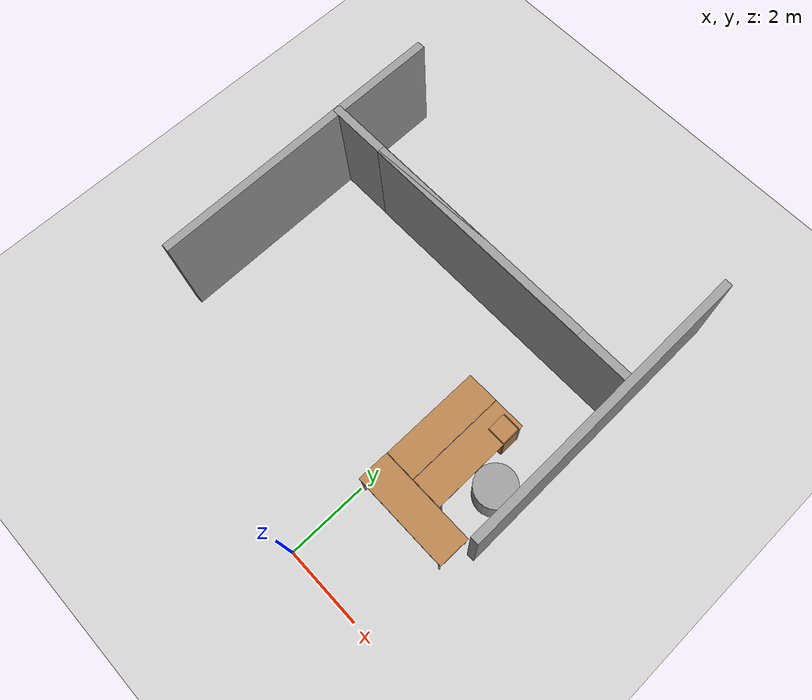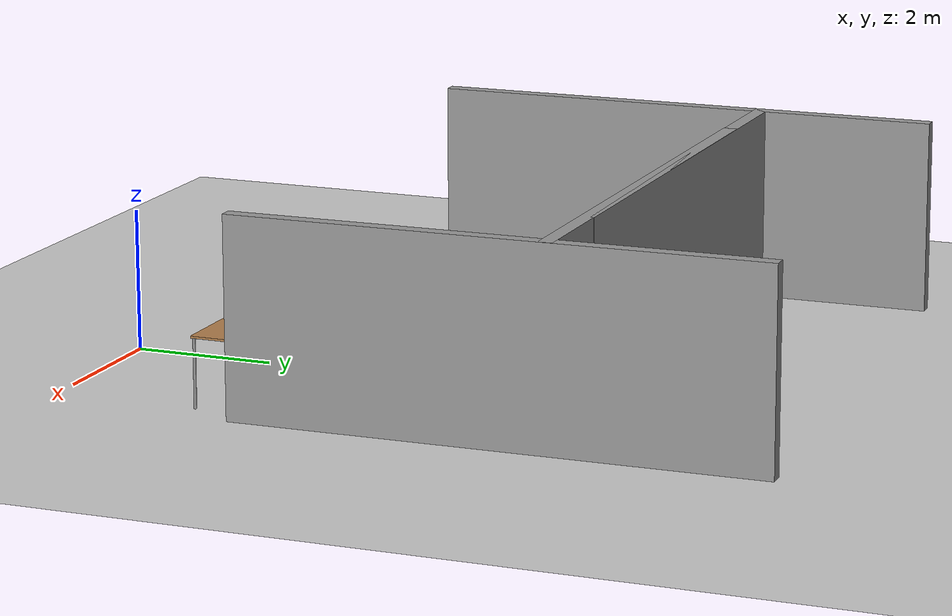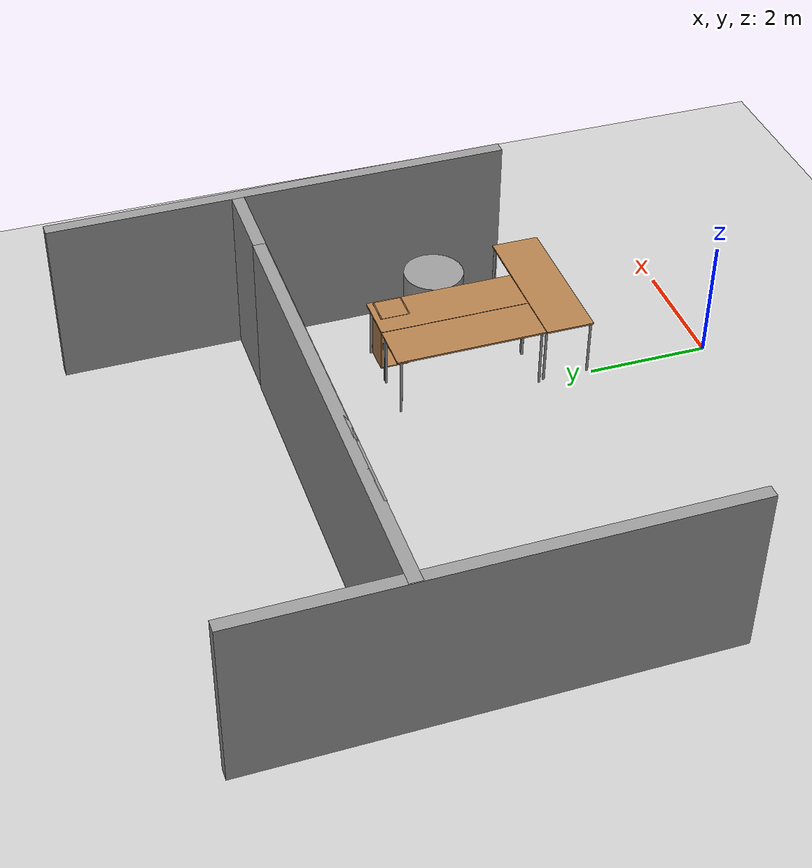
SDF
<sdf version="1.7">
 <world name="default">
  <model name="ground_plane">
   <static>1</static>
   <link name="link">
    <collision name="collision">
     <geometry><plane><normal>0 0 1</normal><size>100 100</size></plane></geometry>
     <surface><friction><ode><mu>100</mu><mu2>50</mu2></ode></friction></surface>
    </collision>
    <visual name="visual">
     <cast_shadows>0</cast_shadows>
     <geometry><plane><normal>0 0 1</normal><size>100 100</size></plane></geometry>
     <material>
      <script><uri>file://media/materials/scripts/gazebo.material</uri><name>Gazebo/Grey</name></script>
     </material>
    </visual>
   </link>
  </model>
  <model name="table_office_clone_clone">
   <link name="link">
    <pose>0 0 0 0 -0.001847 0</pose>
    <inertial>
     <mass>1</mass>
     <inertia><ixx>1</ixx><ixy>0</ixy><ixz>0</ixz><iyy>1</iyy><iyz>0</iyz><izz>1</izz></inertia>
    </inertial>
    <visual name="front_right_leg">
     <pose>1.18 -0.38 0.5 0 -0 0</pose>
     <geometry><cylinder><radius>0.02</radius><length>1</length></cylinder></geometry>
     <material>
      <script><uri>file://media/materials/scripts/gazebo.material</uri><name>Gazebo/Grey</name></script>
      <shader type="pixel"><normal_map>__default__</normal_map></shader>
      <ambient>0.3 0.3 0.3 1</ambient>
      <diffuse>0.7 0.7 0.7 1</diffuse>
      <specular>0.01 0.01 0.01 1</specular>
      <emissive>0 0 0 1</emissive>
     </material>
    </visual>
    <visual name="front_left_leg">
     <pose>1.18 0.38 0.5 0 -0 0</pose>
     <geometry><cylinder><radius>0.02</radius><length>1</length></cylinder></geometry>
     <material>
      <script><uri>file://media/materials/scripts/gazebo.material</uri><name>Gazebo/Grey</name></script>
      <shader type="pixel"><normal_map>__default__</normal_map></shader>
      <ambient>0.3 0.3 0.3 1</ambient>
      <diffuse>0.7 0.7 0.7 1</diffuse>
      <specular>0.01 0.01 0.01 1</specular>
      <emissive>0 0 0 1</emissive>
     </material>
    </visual>
    <visual name="back_right_leg">
     <pose>-1.18 -0.38 0.5 0 -0 0</pose>
     <geometry><cylinder><radius>0.02</radius><length>1</length></cylinder></geometry>
     <material>
      <script><uri>file://media/materials/scripts/gazebo.material</uri><name>Gazebo/Grey</name></script>
      <shader type="pixel"><normal_map>__default__</normal_map></shader>
      <ambient>0.3 0.3 0.3 1</ambient>
      <diffuse>0.7 0.7 0.7 1</diffuse>
      <specular>0.01 0.01 0.01 1</specular>
      <emissive>0 0 0 1</emissive>
     </material>
    </visual>
    <visual name="visual1">
     <pose>0 0 1 0 -0 0</pose>
     <geometry><box><size>2.5 0.8 0.03</size></box></geometry>
     <material>
      <script><uri>file://media/materials/scripts/gazebo.material</uri><name>Gazebo/Wood</name></script>
      <shader type="pixel"><normal_map>__default__</normal_map></shader>
      <ambient>1 1 1 1</ambient>
      <diffuse>1 1 1 1</diffuse>
      <specular>0.2 0.2 0.2 1</specular>
      <emissive>0 0 0 1</emissive>
     </material>
    </visual>
    <visual name="back_left_leg">
     <pose>-1.18 0.38 0.5 0 -0 0</pose>
     <geometry><cylinder><radius>0.02</radius><length>1</length></cylinder></geometry>
     <material>
      <script><uri>file://media/materials/scripts/gazebo.material</uri><name>Gazebo/Grey</name></script>
      <shader type="pixel"><normal_map>__default__</normal_map></shader>
      <ambient>0.3 0.3 0.3 1</ambient>
      <diffuse>0.7 0.7 0.7 1</diffuse>
      <specular>0.01 0.01 0.01 1</specular>
      <emissive>0 0 0 1</emissive>
     </material>
    </visual>
    <collision name="back_left_leg">
     <pose>-0.68 0.38 0.5 0 -0 0</pose>
     <geometry><cylinder><radius>0.02</radius><length>1</length></cylinder></geometry>
     <surface>
      <friction>
       <ode><mu>1</mu><mu2>1</mu2><fdir1>0 0 0</fdir1><slip1>0</slip1><slip2>0</slip2></ode>
       <torsional>
        <coefficient>1</coefficient>
        <patch_radius>0</patch_radius>
        <surface_radius>0</surface_radius>
        <use_patch_radius>1</use_patch_radius>
        <ode><slip>0</slip></ode>
       </torsional>
      </friction>
      <bounce><restitution_coefficient>0</restitution_coefficient><threshold>1e+06</threshold></bounce>
      <contact>
       <collide_without_contact>0</collide_without_contact>
       <collide_without_contact_bitmask>1</collide_without_contact_bitmask>
       <collide_bitmask>1</collide_bitmask>
       <ode>
        <soft_cfm>0</soft_cfm>
        <soft_erp>0.2</soft_erp>
        <kp>1e+13</kp>
        <kd>1</kd>
        <max_vel>0.01</max_vel>
        <min_depth>0</min_depth>
       </ode>
       <bullet>
        <split_impulse>1</split_impulse>
        <split_impulse_penetration_threshold>-0.01</split_impulse_penetration_threshold>
        <soft_cfm>0</soft_cfm>
        <soft_erp>0.2</soft_erp>
        <kp>1e+13</kp>
        <kd>1</kd>
       </bullet>
      </contact>
     </surface>
    </collision>
    <collision name="front_right_leg">
     <pose>0.68 -0.38 0.5 0 -0 0</pose>
     <geometry><cylinder><radius>0.02</radius><length>1</length></cylinder></geometry>
     <surface>
      <friction>
       <ode><mu>1</mu><mu2>1</mu2><fdir1>0 0 0</fdir1><slip1>0</slip1><slip2>0</slip2></ode>
       <torsional>
        <coefficient>1</coefficient>
        <patch_radius>0</patch_radius>
        <surface_radius>0</surface_radius>
        <use_patch_radius>1</use_patch_radius>
        <ode><slip>0</slip></ode>
       </torsional>
      </friction>
      <bounce><restitution_coefficient>0</restitution_coefficient><threshold>1e+06</threshold></bounce>
      <contact>
       <collide_without_contact>0</collide_without_contact>
       <collide_without_contact_bitmask>1</collide_without_contact_bitmask>
       <collide_bitmask>1</collide_bitmask>
       <ode>
        <soft_cfm>0</soft_cfm>
        <soft_erp>0.2</soft_erp>
        <kp>1e+13</kp>
        <kd>1</kd>
        <max_vel>0.01</max_vel>
        <min_depth>0</min_depth>
       </ode>
       <bullet>
        <split_impulse>1</split_impulse>
        <split_impulse_penetration_threshold>-0.01</split_impulse_penetration_threshold>
        <soft_cfm>0</soft_cfm>
        <soft_erp>0.2</soft_erp>
        <kp>1e+13</kp>
        <kd>1</kd>
       </bullet>
      </contact>
     </surface>
    </collision>
    <collision name="surface">
     <pose>0 0 1 0 -0 0</pose>
     <geometry><box><size>1.5 0.8 0.03</size></box></geometry>
     <surface>
      <friction>
       <ode><mu>0.6</mu><mu2>0.6</mu2><fdir1>0 0 0</fdir1><slip1>0</slip1><slip2>0</slip2></ode>
       <torsional>
        <coefficient>1</coefficient>
        <patch_radius>0</patch_radius>
        <surface_radius>0</surface_radius>
        <use_patch_radius>1</use_patch_radius>
        <ode><slip>0</slip></ode>
       </torsional>
      </friction>
      <bounce><restitution_coefficient>0</restitution_coefficient><threshold>1e+06</threshold></bounce>
      <contact>
       <collide_without_contact>0</collide_without_contact>
       <collide_without_contact_bitmask>1</collide_without_contact_bitmask>
       <collide_bitmask>1</collide_bitmask>
       <ode>
        <soft_cfm>0</soft_cfm>
        <soft_erp>0.2</soft_erp>
        <kp>1e+13</kp>
        <kd>1</kd>
        <max_vel>0.01</max_vel>
        <min_depth>0</min_depth>
       </ode>
       <bullet>
        <split_impulse>1</split_impulse>
        <split_impulse_penetration_threshold>-0.01</split_impulse_penetration_threshold>
        <soft_cfm>0</soft_cfm>
        <soft_erp>0.2</soft_erp>
        <kp>1e+13</kp>
        <kd>1</kd>
       </bullet>
      </contact>
     </surface>
    </collision>
    <collision name="back_right_leg">
     <pose>-0.68 -0.38 0.5 0 -0 0</pose>
     <geometry><cylinder><radius>0.02</radius><length>1</length></cylinder></geometry>
     <surface>
      <friction>
       <ode><mu>1</mu><mu2>1</mu2><fdir1>0 0 0</fdir1><slip1>0</slip1><slip2>0</slip2></ode>
       <torsional>
        <coefficient>1</coefficient>
        <patch_radius>0</patch_radius>
        <surface_radius>0</surface_radius>
        <use_patch_radius>1</use_patch_radius>
        <ode><slip>0</slip></ode>
       </torsional>
      </friction>
      <bounce><restitution_coefficient>0</restitution_coefficient><threshold>1e+06</threshold></bounce>
      <contact>
       <collide_without_contact>0</collide_without_contact>
       <collide_without_contact_bitmask>1</collide_without_contact_bitmask>
       <collide_bitmask>1</collide_bitmask>
       <ode>
        <soft_cfm>0</soft_cfm>
        <soft_erp>0.2</soft_erp>
        <kp>1e+13</kp>
        <kd>1</kd>
        <max_vel>0.01</max_vel>
        <min_depth>0</min_depth>
       </ode>
       <bullet>
        <split_impulse>1</split_impulse>
        <split_impulse_penetration_threshold>-0.01</split_impulse_penetration_threshold>
        <soft_cfm>0</soft_cfm>
        <soft_erp>0.2</soft_erp>
        <kp>1e+13</kp>
        <kd>1</kd>
       </bullet>
      </contact>
     </surface>
    </collision>
    <collision name="front_left_leg">
     <pose>0.68 0.38 0.5 0 -0 0</pose>
     <geometry><cylinder><radius>0.02</radius><length>1</length></cylinder></geometry>
     <surface>
      <friction>
       <ode><mu>1</mu><mu2>1</mu2><fdir1>0 0 0</fdir1><slip1>0</slip1><slip2>0</slip2></ode>
       <torsional>
        <coefficient>1</coefficient>
        <patch_radius>0</patch_radius>
        <surface_radius>0</surface_radius>
        <use_patch_radius>1</use_patch_radius>
        <ode><slip>0</slip></ode>
       </torsional>
      </friction>
      <bounce><restitution_coefficient>0</restitution_coefficient><threshold>1e+06</threshold></bounce>
      <contact>
       <collide_without_contact>0</collide_without_contact>
       <collide_without_contact_bitmask>1</collide_without_contact_bitmask>
       <collide_bitmask>1</collide_bitmask>
       <ode>
        <soft_cfm>0</soft_cfm>
        <soft_erp>0.2</soft_erp>
        <kp>1e+13</kp>
        <kd>1</kd>
        <max_vel>0.01</max_vel>
        <min_depth>0</min_depth>
       </ode>
       <bullet>
        <split_impulse>1</split_impulse>
        <split_impulse_penetration_threshold>-0.01</split_impulse_penetration_threshold>
        <soft_cfm>0</soft_cfm>
        <soft_erp>0.2</soft_erp>
        <kp>1e+13</kp>
        <kd>1</kd>
       </bullet>
      </contact>
     </surface>
    </collision>
   </link>
   <static>1</static>
   <pose>1.25466 2.44122 0 0 -0 0</pose>
  </model>
  <model name="table_office_clone_clone_clone_clone">
   <link name="link">
    <pose>0 0 0 0 -0.001847 0</pose>
    <inertial>
     <mass>1</mass>
     <inertia><ixx>1</ixx><ixy>0</ixy><ixz>0</ixz><iyy>1</iyy><iyz>0</iyz><izz>1</izz></inertia>
    </inertial>
    <visual name="front_right_leg">
     <pose>1.18 -0.38 0.5 0 -0 0</pose>
     <geometry><cylinder><radius>0.02</radius><length>1</length></cylinder></geometry>
     <material>
      <script><uri>file://media/materials/scripts/gazebo.material</uri><name>Gazebo/Grey</name></script>
      <shader type="pixel"><normal_map>__default__</normal_map></shader>
      <ambient>0.3 0.3 0.3 1</ambient>
      <diffuse>0.7 0.7 0.7 1</diffuse>
      <specular>0.01 0.01 0.01 1</specular>
      <emissive>0 0 0 1</emissive>
     </material>
    </visual>
    <visual name="front_left_leg">
     <pose>1.18 0.38 0.5 0 -0 0</pose>
     <geometry><cylinder><radius>0.02</radius><length>1</length></cylinder></geometry>
     <material>
      <script><uri>file://media/materials/scripts/gazebo.material</uri><name>Gazebo/Grey</name></script>
      <shader type="pixel"><normal_map>__default__</normal_map></shader>
      <ambient>0.3 0.3 0.3 1</ambient>
      <diffuse>0.7 0.7 0.7 1</diffuse>
      <specular>0.01 0.01 0.01 1</specular>
      <emissive>0 0 0 1</emissive>
     </material>
    </visual>
    <visual name="back_right_leg">
     <pose>-1.18 -0.38 0.5 0 -0 0</pose>
     <geometry><cylinder><radius>0.02</radius><length>1</length></cylinder></geometry>
     <material>
      <script><uri>file://media/materials/scripts/gazebo.material</uri><name>Gazebo/Grey</name></script>
      <shader type="pixel"><normal_map>__default__</normal_map></shader>
      <ambient>0.3 0.3 0.3 1</ambient>
      <diffuse>0.7 0.7 0.7 1</diffuse>
      <specular>0.01 0.01 0.01 1</specular>
      <emissive>0 0 0 1</emissive>
     </material>
    </visual>
    <visual name="visual1">
     <pose>0 0 1 0 -0 0</pose>
     <geometry><box><size>2.5 0.8 0.03</size></box></geometry>
     <material>
      <script><uri>file://media/materials/scripts/gazebo.material</uri><name>Gazebo/Wood</name></script>
      <shader type="pixel"><normal_map>__default__</normal_map></shader>
      <ambient>1 1 1 1</ambient>
      <diffuse>1 1 1 1</diffuse>
      <specular>0.2 0.2 0.2 1</specular>
      <emissive>0 0 0 1</emissive>
     </material>
    </visual>
    <visual name="back_left_leg">
     <pose>-1.18 0.38 0.5 0 -0 0</pose>
     <geometry><cylinder><radius>0.02</radius><length>1</length></cylinder></geometry>
     <material>
      <script><uri>file://media/materials/scripts/gazebo.material</uri><name>Gazebo/Grey</name></script>
      <shader type="pixel"><normal_map>__default__</normal_map></shader>
      <ambient>0.3 0.3 0.3 1</ambient>
      <diffuse>0.7 0.7 0.7 1</diffuse>
      <specular>0.01 0.01 0.01 1</specular>
      <emissive>0 0 0 1</emissive>
     </material>
    </visual>
    <collision name="back_left_leg">
     <pose>-0.68 0.38 0.5 0 -0 0</pose>
     <geometry><cylinder><radius>0.02</radius><length>1</length></cylinder></geometry>
     <surface>
      <friction>
       <ode><mu>1</mu><mu2>1</mu2><fdir1>0 0 0</fdir1><slip1>0</slip1><slip2>0</slip2></ode>
       <torsional>
        <coefficient>1</coefficient>
        <patch_radius>0</patch_radius>
        <surface_radius>0</surface_radius>
        <use_patch_radius>1</use_patch_radius>
        <ode><slip>0</slip></ode>
       </torsional>
      </friction>
      <bounce><restitution_coefficient>0</restitution_coefficient><threshold>1e+06</threshold></bounce>
      <contact>
       <collide_without_contact>0</collide_without_contact>
       <collide_without_contact_bitmask>1</collide_without_contact_bitmask>
       <collide_bitmask>1</collide_bitmask>
       <ode>
        <soft_cfm>0</soft_cfm>
        <soft_erp>0.2</soft_erp>
        <kp>1e+13</kp>
        <kd>1</kd>
        <max_vel>0.01</max_vel>
        <min_depth>0</min_depth>
       </ode>
       <bullet>
        <split_impulse>1</split_impulse>
        <split_impulse_penetration_threshold>-0.01</split_impulse_penetration_threshold>
        <soft_cfm>0</soft_cfm>
        <soft_erp>0.2</soft_erp>
        <kp>1e+13</kp>
        <kd>1</kd>
       </bullet>
      </contact>
     </surface>
    </collision>
    <collision name="front_right_leg">
     <pose>0.68 -0.38 0.5 0 -0 0</pose>
     <geometry><cylinder><radius>0.02</radius><length>1</length></cylinder></geometry>
     <surface>
      <friction>
       <ode><mu>1</mu><mu2>1</mu2><fdir1>0 0 0</fdir1><slip1>0</slip1><slip2>0</slip2></ode>
       <torsional>
        <coefficient>1</coefficient>
        <patch_radius>0</patch_radius>
        <surface_radius>0</surface_radius>
        <use_patch_radius>1</use_patch_radius>
        <ode><slip>0</slip></ode>
       </torsional>
      </friction>
      <bounce><restitution_coefficient>0</restitution_coefficient><threshold>1e+06</threshold></bounce>
      <contact>
       <collide_without_contact>0</collide_without_contact>
       <collide_without_contact_bitmask>1</collide_without_contact_bitmask>
       <collide_bitmask>1</collide_bitmask>
       <ode>
        <soft_cfm>0</soft_cfm>
        <soft_erp>0.2</soft_erp>
        <kp>1e+13</kp>
        <kd>1</kd>
        <max_vel>0.01</max_vel>
        <min_depth>0</min_depth>
       </ode>
       <bullet>
        <split_impulse>1</split_impulse>
        <split_impulse_penetration_threshold>-0.01</split_impulse_penetration_threshold>
        <soft_cfm>0</soft_cfm>
        <soft_erp>0.2</soft_erp>
        <kp>1e+13</kp>
        <kd>1</kd>
       </bullet>
      </contact>
     </surface>
    </collision>
    <collision name="surface">
     <pose>0 0 1 0 -0 0</pose>
     <geometry><box><size>1.5 0.8 0.03</size></box></geometry>
     <surface>
      <friction>
       <ode><mu>0.6</mu><mu2>0.6</mu2><fdir1>0 0 0</fdir1><slip1>0</slip1><slip2>0</slip2></ode>
       <torsional>
        <coefficient>1</coefficient>
        <patch_radius>0</patch_radius>
        <surface_radius>0</surface_radius>
        <use_patch_radius>1</use_patch_radius>
        <ode><slip>0</slip></ode>
       </torsional>
      </friction>
      <bounce><restitution_coefficient>0</restitution_coefficient><threshold>1e+06</threshold></bounce>
      <contact>
       <collide_without_contact>0</collide_without_contact>
       <collide_without_contact_bitmask>1</collide_without_contact_bitmask>
       <collide_bitmask>1</collide_bitmask>
       <ode>
        <soft_cfm>0</soft_cfm>
        <soft_erp>0.2</soft_erp>
        <kp>1e+13</kp>
        <kd>1</kd>
        <max_vel>0.01</max_vel>
        <min_depth>0</min_depth>
       </ode>
       <bullet>
        <split_impulse>1</split_impulse>
        <split_impulse_penetration_threshold>-0.01</split_impulse_penetration_threshold>
        <soft_cfm>0</soft_cfm>
        <soft_erp>0.2</soft_erp>
        <kp>1e+13</kp>
        <kd>1</kd>
       </bullet>
      </contact>
     </surface>
    </collision>
    <collision name="back_right_leg">
     <pose>-0.68 -0.38 0.5 0 -0 0</pose>
     <geometry><cylinder><radius>0.02</radius><length>1</length></cylinder></geometry>
     <surface>
      <friction>
       <ode><mu>1</mu><mu2>1</mu2><fdir1>0 0 0</fdir1><slip1>0</slip1><slip2>0</slip2></ode>
       <torsional>
        <coefficient>1</coefficient>
        <patch_radius>0</patch_radius>
        <surface_radius>0</surface_radius>
        <use_patch_radius>1</use_patch_radius>
        <ode><slip>0</slip></ode>
       </torsional>
      </friction>
      <bounce><restitution_coefficient>0</restitution_coefficient><threshold>1e+06</threshold></bounce>
      <contact>
       <collide_without_contact>0</collide_without_contact>
       <collide_without_contact_bitmask>1</collide_without_contact_bitmask>
       <collide_bitmask>1</collide_bitmask>
       <ode>
        <soft_cfm>0</soft_cfm>
        <soft_erp>0.2</soft_erp>
        <kp>1e+13</kp>
        <kd>1</kd>
        <max_vel>0.01</max_vel>
        <min_depth>0</min_depth>
       </ode>
       <bullet>
        <split_impulse>1</split_impulse>
        <split_impulse_penetration_threshold>-0.01</split_impulse_penetration_threshold>
        <soft_cfm>0</soft_cfm>
        <soft_erp>0.2</soft_erp>
        <kp>1e+13</kp>
        <kd>1</kd>
       </bullet>
      </contact>
     </surface>
    </collision>
    <collision name="front_left_leg">
     <pose>0.68 0.38 0.5 0 -0 0</pose>
     <geometry><cylinder><radius>0.02</radius><length>1</length></cylinder></geometry>
     <surface>
      <friction>
       <ode><mu>1</mu><mu2>1</mu2><fdir1>0 0 0</fdir1><slip1>0</slip1><slip2>0</slip2></ode>
       <torsional>
        <coefficient>1</coefficient>
        <patch_radius>0</patch_radius>
        <surface_radius>0</surface_radius>
        <use_patch_radius>1</use_patch_radius>
        <ode><slip>0</slip></ode>
       </torsional>
      </friction>
      <bounce><restitution_coefficient>0</restitution_coefficient><threshold>1e+06</threshold></bounce>
      <contact>
       <collide_without_contact>0</collide_without_contact>
       <collide_without_contact_bitmask>1</collide_without_contact_bitmask>
       <collide_bitmask>1</collide_bitmask>
       <ode>
        <soft_cfm>0</soft_cfm>
        <soft_erp>0.2</soft_erp>
        <kp>1e+13</kp>
        <kd>1</kd>
        <max_vel>0.01</max_vel>
        <min_depth>0</min_depth>
       </ode>
       <bullet>
        <split_impulse>1</split_impulse>
        <split_impulse_penetration_threshold>-0.01</split_impulse_penetration_threshold>
        <soft_cfm>0</soft_cfm>
        <soft_erp>0.2</soft_erp>
        <kp>1e+13</kp>
        <kd>1</kd>
       </bullet>
      </contact>
     </surface>
    </collision>
   </link>
   <static>1</static>
   <pose>0.403324 4.09957 0 0 0 -1.56652</pose>
  </model>
  <model name="table_office_clone_clone_clone_clone_0">
   <link name="link">
    <pose>0 0 0 0 -0.001847 0</pose>
    <inertial>
     <mass>1</mass>
     <inertia><ixx>1</ixx><ixy>0</ixy><ixz>0</ixz><iyy>1</iyy><iyz>0</iyz><izz>1</izz></inertia>
    </inertial>
    <visual name="front_right_leg">
     <pose>1.18 -0.38 0.5 0 -0 0</pose>
     <geometry><cylinder><radius>0.02</radius><length>1</length></cylinder></geometry>
     <material>
      <script><uri>file://media/materials/scripts/gazebo.material</uri><name>Gazebo/Grey</name></script>
      <shader type="pixel"><normal_map>__default__</normal_map></shader>
      <ambient>0.3 0.3 0.3 1</ambient>
      <diffuse>0.7 0.7 0.7 1</diffuse>
      <specular>0.01 0.01 0.01 1</specular>
      <emissive>0 0 0 1</emissive>
     </material>
    </visual>
    <visual name="front_left_leg">
     <pose>1.18 0.38 0.5 0 -0 0</pose>
     <geometry><cylinder><radius>0.02</radius><length>1</length></cylinder></geometry>
     <material>
      <script><uri>file://media/materials/scripts/gazebo.material</uri><name>Gazebo/Grey</name></script>
      <shader type="pixel"><normal_map>__default__</normal_map></shader>
      <ambient>0.3 0.3 0.3 1</ambient>
      <diffuse>0.7 0.7 0.7 1</diffuse>
      <specular>0.01 0.01 0.01 1</specular>
      <emissive>0 0 0 1</emissive>
     </material>
    </visual>
    <visual name="back_right_leg">
     <pose>-1.18 -0.38 0.5 0 -0 0</pose>
     <geometry><cylinder><radius>0.02</radius><length>1</length></cylinder></geometry>
     <material>
      <script><uri>file://media/materials/scripts/gazebo.material</uri><name>Gazebo/Grey</name></script>
      <shader type="pixel"><normal_map>__default__</normal_map></shader>
      <ambient>0.3 0.3 0.3 1</ambient>
      <diffuse>0.7 0.7 0.7 1</diffuse>
      <specular>0.01 0.01 0.01 1</specular>
      <emissive>0 0 0 1</emissive>
     </material>
    </visual>
    <visual name="visual1">
     <pose>0 0 1 0 -0 0</pose>
     <geometry><box><size>2.5 0.8 0.03</size></box></geometry>
     <material>
      <script><uri>file://media/materials/scripts/gazebo.material</uri><name>Gazebo/Wood</name></script>
      <shader type="pixel"><normal_map>__default__</normal_map></shader>
      <ambient>1 1 1 1</ambient>
      <diffuse>1 1 1 1</diffuse>
      <specular>0.2 0.2 0.2 1</specular>
      <emissive>0 0 0 1</emissive>
     </material>
    </visual>
    <visual name="back_left_leg">
     <pose>-1.18 0.38 0.5 0 -0 0</pose>
     <geometry><cylinder><radius>0.02</radius><length>1</length></cylinder></geometry>
     <material>
      <script><uri>file://media/materials/scripts/gazebo.material</uri><name>Gazebo/Grey</name></script>
      <shader type="pixel"><normal_map>__default__</normal_map></shader>
      <ambient>0.3 0.3 0.3 1</ambient>
      <diffuse>0.7 0.7 0.7 1</diffuse>
      <specular>0.01 0.01 0.01 1</specular>
      <emissive>0 0 0 1</emissive>
     </material>
    </visual>
    <collision name="back_left_leg">
     <pose>-0.68 0.38 0.5 0 -0 0</pose>
     <geometry><cylinder><radius>0.02</radius><length>1</length></cylinder></geometry>
     <surface>
      <friction>
       <ode><mu>1</mu><mu2>1</mu2><fdir1>0 0 0</fdir1><slip1>0</slip1><slip2>0</slip2></ode>
       <torsional>
        <coefficient>1</coefficient>
        <patch_radius>0</patch_radius>
        <surface_radius>0</surface_radius>
        <use_patch_radius>1</use_patch_radius>
        <ode><slip>0</slip></ode>
       </torsional>
      </friction>
      <bounce><restitution_coefficient>0</restitution_coefficient><threshold>1e+06</threshold></bounce>
      <contact>
       <collide_without_contact>0</collide_without_contact>
       <collide_without_contact_bitmask>1</collide_without_contact_bitmask>
       <collide_bitmask>1</collide_bitmask>
       <ode>
        <soft_cfm>0</soft_cfm>
        <soft_erp>0.2</soft_erp>
        <kp>1e+13</kp>
        <kd>1</kd>
        <max_vel>0.01</max_vel>
        <min_depth>0</min_depth>
       </ode>
       <bullet>
        <split_impulse>1</split_impulse>
        <split_impulse_penetration_threshold>-0.01</split_impulse_penetration_threshold>
        <soft_cfm>0</soft_cfm>
        <soft_erp>0.2</soft_erp>
        <kp>1e+13</kp>
        <kd>1</kd>
       </bullet>
      </contact>
     </surface>
    </collision>
    <collision name="front_right_leg">
     <pose>0.68 -0.38 0.5 0 -0 0</pose>
     <geometry><cylinder><radius>0.02</radius><length>1</length></cylinder></geometry>
     <surface>
      <friction>
       <ode><mu>1</mu><mu2>1</mu2><fdir1>0 0 0</fdir1><slip1>0</slip1><slip2>0</slip2></ode>
       <torsional>
        <coefficient>1</coefficient>
        <patch_radius>0</patch_radius>
        <surface_radius>0</surface_radius>
        <use_patch_radius>1</use_patch_radius>
        <ode><slip>0</slip></ode>
       </torsional>
      </friction>
      <bounce><restitution_coefficient>0</restitution_coefficient><threshold>1e+06</threshold></bounce>
      <contact>
       <collide_without_contact>0</collide_without_contact>
       <collide_without_contact_bitmask>1</collide_without_contact_bitmask>
       <collide_bitmask>1</collide_bitmask>
       <ode>
        <soft_cfm>0</soft_cfm>
        <soft_erp>0.2</soft_erp>
        <kp>1e+13</kp>
        <kd>1</kd>
        <max_vel>0.01</max_vel>
        <min_depth>0</min_depth>
       </ode>
       <bullet>
        <split_impulse>1</split_impulse>
        <split_impulse_penetration_threshold>-0.01</split_impulse_penetration_threshold>
        <soft_cfm>0</soft_cfm>
        <soft_erp>0.2</soft_erp>
        <kp>1e+13</kp>
        <kd>1</kd>
       </bullet>
      </contact>
     </surface>
    </collision>
    <collision name="surface">
     <pose>0 0 1 0 -0 0</pose>
     <geometry><box><size>1.5 0.8 0.03</size></box></geometry>
     <surface>
      <friction>
       <ode><mu>0.6</mu><mu2>0.6</mu2><fdir1>0 0 0</fdir1><slip1>0</slip1><slip2>0</slip2></ode>
       <torsional>
        <coefficient>1</coefficient>
        <patch_radius>0</patch_radius>
        <surface_radius>0</surface_radius>
        <use_patch_radius>1</use_patch_radius>
        <ode><slip>0</slip></ode>
       </torsional>
      </friction>
      <bounce><restitution_coefficient>0</restitution_coefficient><threshold>1e+06</threshold></bounce>
      <contact>
       <collide_without_contact>0</collide_without_contact>
       <collide_without_contact_bitmask>1</collide_without_contact_bitmask>
       <collide_bitmask>1</collide_bitmask>
       <ode>
        <soft_cfm>0</soft_cfm>
        <soft_erp>0.2</soft_erp>
        <kp>1e+13</kp>
        <kd>1</kd>
        <max_vel>0.01</max_vel>
        <min_depth>0</min_depth>
       </ode>
       <bullet>
        <split_impulse>1</split_impulse>
        <split_impulse_penetration_threshold>-0.01</split_impulse_penetration_threshold>
        <soft_cfm>0</soft_cfm>
        <soft_erp>0.2</soft_erp>
        <kp>1e+13</kp>
        <kd>1</kd>
       </bullet>
      </contact>
     </surface>
    </collision>
    <collision name="back_right_leg">
     <pose>-0.68 -0.38 0.5 0 -0 0</pose>
     <geometry><cylinder><radius>0.02</radius><length>1</length></cylinder></geometry>
     <surface>
      <friction>
       <ode><mu>1</mu><mu2>1</mu2><fdir1>0 0 0</fdir1><slip1>0</slip1><slip2>0</slip2></ode>
       <torsional>
        <coefficient>1</coefficient>
        <patch_radius>0</patch_radius>
        <surface_radius>0</surface_radius>
        <use_patch_radius>1</use_patch_radius>
        <ode><slip>0</slip></ode>
       </torsional>
      </friction>
      <bounce><restitution_coefficient>0</restitution_coefficient><threshold>1e+06</threshold></bounce>
      <contact>
       <collide_without_contact>0</collide_without_contact>
       <collide_without_contact_bitmask>1</collide_without_contact_bitmask>
       <collide_bitmask>1</collide_bitmask>
       <ode>
        <soft_cfm>0</soft_cfm>
        <soft_erp>0.2</soft_erp>
        <kp>1e+13</kp>
        <kd>1</kd>
        <max_vel>0.01</max_vel>
        <min_depth>0</min_depth>
       </ode>
       <bullet>
        <split_impulse>1</split_impulse>
        <split_impulse_penetration_threshold>-0.01</split_impulse_penetration_threshold>
        <soft_cfm>0</soft_cfm>
        <soft_erp>0.2</soft_erp>
        <kp>1e+13</kp>
        <kd>1</kd>
       </bullet>
      </contact>
     </surface>
    </collision>
    <collision name="front_left_leg">
     <pose>0.68 0.38 0.5 0 -0 0</pose>
     <geometry><cylinder><radius>0.02</radius><length>1</length></cylinder></geometry>
     <surface>
      <friction>
       <ode><mu>1</mu><mu2>1</mu2><fdir1>0 0 0</fdir1><slip1>0</slip1><slip2>0</slip2></ode>
       <torsional>
        <coefficient>1</coefficient>
        <patch_radius>0</patch_radius>
        <surface_radius>0</surface_radius>
        <use_patch_radius>1</use_patch_radius>
        <ode><slip>0</slip></ode>
       </torsional>
      </friction>
      <bounce><restitution_coefficient>0</restitution_coefficient><threshold>1e+06</threshold></bounce>
      <contact>
       <collide_without_contact>0</collide_without_contact>
       <collide_without_contact_bitmask>1</collide_without_contact_bitmask>
       <collide_bitmask>1</collide_bitmask>
       <ode>
        <soft_cfm>0</soft_cfm>
        <soft_erp>0.2</soft_erp>
        <kp>1e+13</kp>
        <kd>1</kd>
        <max_vel>0.01</max_vel>
        <min_depth>0</min_depth>
       </ode>
       <bullet>
        <split_impulse>1</split_impulse>
        <split_impulse_penetration_threshold>-0.01</split_impulse_penetration_threshold>
        <soft_cfm>0</soft_cfm>
        <soft_erp>0.2</soft_erp>
        <kp>1e+13</kp>
        <kd>1</kd>
       </bullet>
      </contact>
     </surface>
    </collision>
   </link>
   <static>1</static>
   <pose>1.21341 4.10072 0 0 0 -1.56652</pose>
  </model>
  <model name="cabinet_clone_1">
   <static>1</static>
   <link name="cabinet_bottom_plate">
    <inertial>
     <pose>0 0 -1 0 -0 0</pose>
     <inertia><ixx>2.05</ixx><ixy>0</ixy><ixz>0</ixz><iyy>2.05</iyy><iyz>0</iyz><izz>2.05</izz></inertia>
     <mass>25</mass>
    </inertial>
    <collision name="cabinet_bottom_plate_geom">
     <pose>0 0 0.01 0 -0 0</pose>
     <geometry><box><size>0.45 0.45 0.02</size></box></geometry>
    </collision>
    <visual name="cabinet_bottom_plate_geom_visual">
     <pose>0 0 0.01 0 -0 0</pose>
     <geometry><box><size>0.45 0.45 0.02</size></box></geometry>
     <material>
      <script><uri>file://media/materials/scripts/gazebo.material</uri><name>Gazebo/Wood</name></script>
     </material>
    </visual>
    <collision name="cabinet_bottom_plate_geom_cabinet_back_plate">
     <pose>0.235 0 0.51 0 -0 0</pose>
     <geometry><box><size>0.02 0.45 1.02</size></box></geometry>
    </collision>
    <visual name="cabinet_bottom_plate_geom_cabinet_back_plate_visual">
     <pose>0.235 0 0.51 0 -0 0</pose>
     <geometry><box><size>0.02 0.45 1.02</size></box></geometry>
     <material>
      <script><uri>file://media/materials/scripts/gazebo.material</uri><name>Gazebo/Wood</name></script>
     </material>
    </visual>
    <collision name="cabinet_bottom_plate_geom_cabinet_left_plate">
     <pose>0 0.235 0.51 0 -0 0</pose>
     <geometry><box><size>0.45 0.02 1.02</size></box></geometry>
    </collision>
    <visual name="cabinet_bottom_plate_geom_cabinet_left_plate_visual">
     <pose>0 0.235 0.51 0 -0 0</pose>
     <geometry><box><size>0.45 0.02 1.02</size></box></geometry>
     <material>
      <script><uri>file://media/materials/scripts/gazebo.material</uri><name>Gazebo/Wood</name></script>
     </material>
    </visual>
    <collision name="cabinet_bottom_plate_geom_cabinet_middle_plate">
     <pose>0 0 0.51 0 -0 0</pose>
     <geometry><box><size>0.45 0.45 0.02</size></box></geometry>
    </collision>
    <visual name="cabinet_bottom_plate_geom_cabinet_middle_plate_visual">
     <pose>0 0 0.51 0 -0 0</pose>
     <geometry><box><size>0.45 0.45 0.02</size></box></geometry>
     <material>
      <script><uri>file://media/materials/scripts/gazebo.material</uri><name>Gazebo/Wood</name></script>
     </material>
    </visual>
    <collision name="cabinet_bottom_plate_geom_cabinet_right_plate">
     <pose>0 -0.235 0.51 0 -0 0</pose>
     <geometry><box><size>0.45 0.02 1.02</size></box></geometry>
    </collision>
    <visual name="cabinet_bottom_plate_geom_cabinet_right_plate_visual">
     <pose>0 -0.235 0.51 0 -0 0</pose>
     <geometry><box><size>0.45 0.02 1.02</size></box></geometry>
     <material>
      <script><uri>file://media/materials/scripts/gazebo.material</uri><name>Gazebo/Wood</name></script>
     </material>
    </visual>
    <collision name="cabinet_bottom_plate_geom_cabinet_top_plate">
     <pose>0 0 1.01 0 -0 0</pose>
     <geometry><box><size>0.45 0.45 0.02</size></box></geometry>
    </collision>
    <visual name="cabinet_bottom_plate_geom_cabinet_top_plate_visual">
     <pose>0 0 1.01 0 -0 0</pose>
     <geometry><box><size>0.45 0.45 0.02</size></box></geometry>
     <material>
      <script><uri>file://media/materials/scripts/gazebo.material</uri><name>Gazebo/Wood</name></script>
     </material>
    </visual>
   </link>
   <pose>1.36102 5.01097 0 0 -0 0</pose>
  </model>
  <model name="grey_wall_clone_clone_clone_clone_0">
   <static>1</static>
   <link name="link">
    <pose>0 0 1.4 0 -0 0</pose>
    <collision name="collision"><geometry><box><size>7.5 0.2 2.8</size></box></geometry></collision>
    <visual name="visual">
     <cast_shadows>0</cast_shadows>
     <geometry><box><size>7.5 0.2 2.8</size></box></geometry>
     <material>
      <script>
       <uri>model://grey_wall/materials/scripts</uri>
       <uri>model://grey_wall/materials/textures</uri>
       <name>vrc/grey_wall</name>
      </script>
     </material>
    </visual>
   </link>
   <pose>2.69134 6.44999 0 0 0 -1.56025</pose>
  </model>
  <model name="grey_wall_clone_clone_clone_clone_1">
   <static>1</static>
   <link name="link">
    <pose>0 0 1.4 0 -0 0</pose>
    <collision name="collision"><geometry><box><size>7.5 0.2 2.8</size></box></geometry></collision>
    <visual name="visual">
     <cast_shadows>0</cast_shadows>
     <geometry><box><size>7.5 0.2 2.8</size></box></geometry>
     <material>
      <script>
       <uri>model://grey_wall/materials/scripts</uri>
       <uri>model://grey_wall/materials/textures</uri>
       <name>vrc/grey_wall</name>
      </script>
     </material>
    </visual>
   </link>
   <pose>-6.13087 5.98157 0 0 0 -1.56025</pose>
  </model>
  <model name="grey_wall_clone_clone_0">
   <static>1</static>
   <link name="link">
    <pose>0 0 1.4 0 -0 0</pose>
    <collision name="collision"><geometry><box><size>7.5 0.2 2.8</size></box></geometry></collision>
    <visual name="visual">
     <cast_shadows>0</cast_shadows>
     <geometry><box><size>7.5 0.2 2.8</size></box></geometry>
     <material>
      <script>
       <uri>model://grey_wall/materials/scripts</uri>
       <uri>model://grey_wall/materials/textures</uri>
       <name>vrc/grey_wall</name>
      </script>
     </material>
    </visual>
   </link>
   <pose>-0.980505 7.15086 0 0 -0 0</pose>
  </model>
  <model name="grey_wall_clone_clone_1">
   <static>1</static>
   <link name="link">
    <pose>0 0 1.4 0 -0 0</pose>
    <collision name="collision"><geometry><box><size>7.5 0.2 2.8</size></box></geometry></collision>
    <visual name="visual">
     <cast_shadows>0</cast_shadows>
     <geometry><box><size>7.5 0.2 2.8</size></box></geometry>
     <material>
      <script>
       <uri>model://grey_wall/materials/scripts</uri>
       <uri>model://grey_wall/materials/textures</uri>
       <name>vrc/grey_wall</name>
      </script>
     </material>
    </visual>
   </link>
   <pose>-2.47938 7.15884 0 0 -0 0</pose>
  </model>
  <model name="unit_cylinder_clone_1">
   <pose>2.1169 4.02333 0.499998 3e-06 4e-06 -0.000249</pose>
   <link name="link">
    <inertial>
     <mass>1</mass>
     <inertia><ixx>0.145833</ixx><ixy>0</ixy><ixz>0</ixz><iyy>0.145833</iyy><iyz>0</iyz><izz>0.125</izz></inertia>
    </inertial>
    <collision name="collision">
     <geometry><cylinder><radius>0.5</radius><length>1</length></cylinder></geometry>
    </collision>
    <visual name="visual">
     <geometry><cylinder><radius>0.5</radius><length>1</length></cylinder></geometry>
     <material>
      <script><name>Gazebo/Grey</name><uri>file://media/materials/scripts/gazebo.material</uri></script>
     </material>
    </visual>
   </link>
  </model>
 </world>
</sdf>
